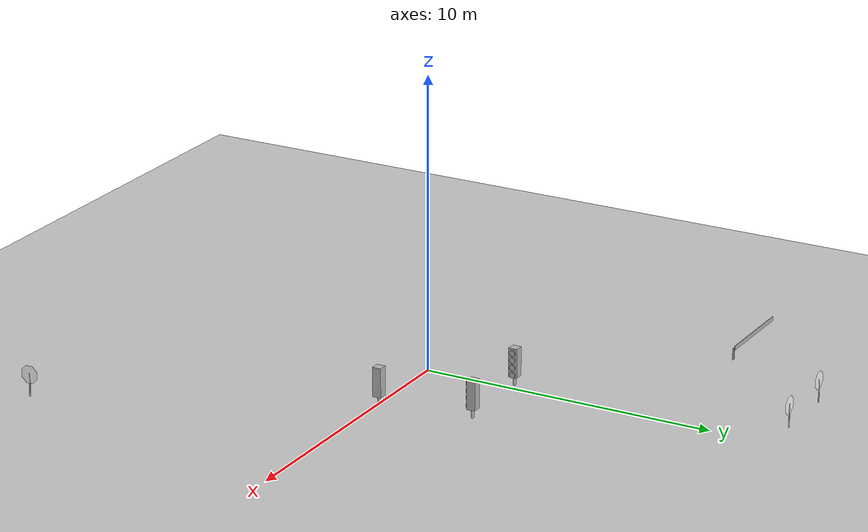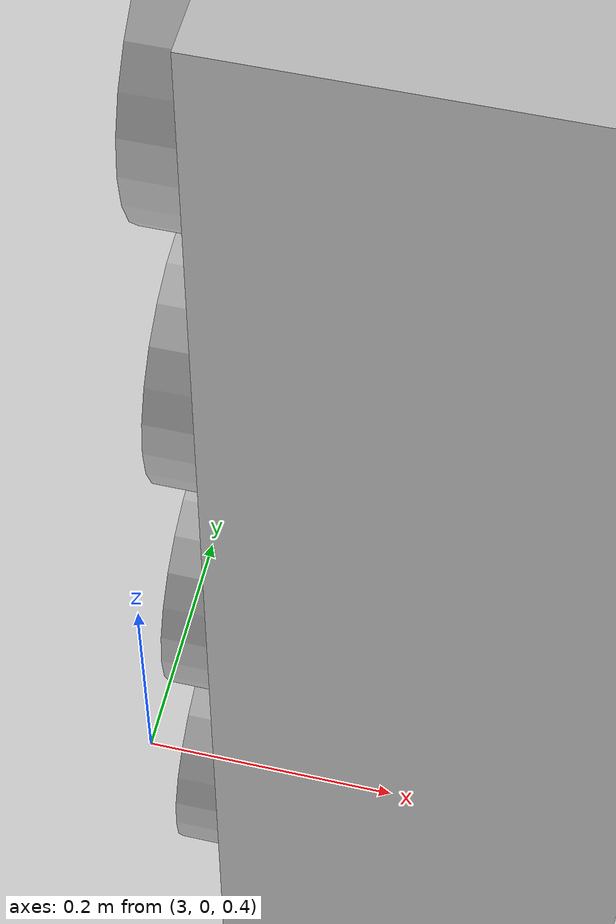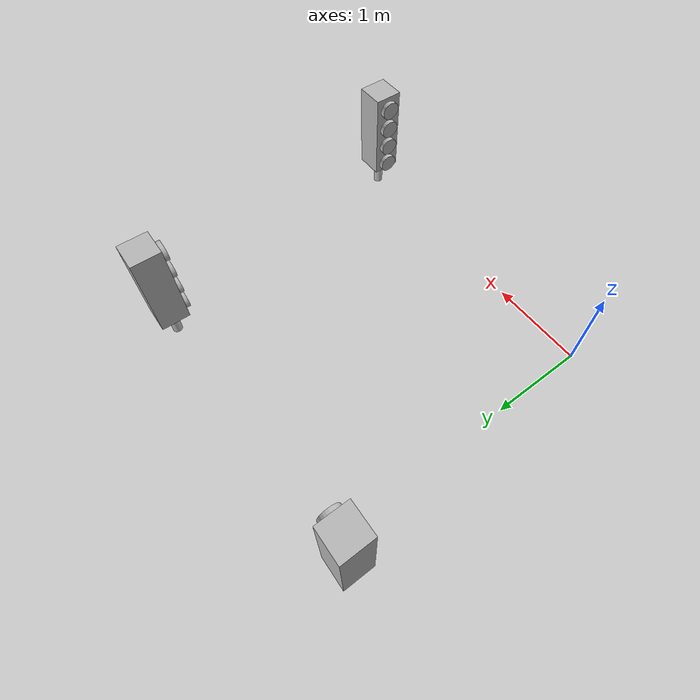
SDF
<?xml version="1.0"?>
<sdf version="1.5">
  <world name="default">

    <include>
      <uri>model://sun</uri>
    </include>

    <include>
      <uri>model://ground_plane</uri>
    </include>

    <!-- Own physics settings to speed up simulation -->
    <physics type='ode'>
      <max_step_size>0.01</max_step_size>
      <real_time_factor>1</real_time_factor>
      <real_time_update_rate>100</real_time_update_rate>
      <gravity>0 0 -9.8</gravity>
    </physics>

    <include>
      <pose>1 2.3 0.01 0 0 0</pose>
      <uri>model://ground</uri>
    </include>

    <include>
      <pose>-5.54 8.24 .25 0 0 0</pose>
      <uri>model://blocking_bar</uri>
    </include>

    <!-- traffic light Start -->
    <model name="traffic_light_first">
      <include>
	<static>true</static>
	<pose>3.24 0.03 .01 0 0 3.14</pose>
	<uri>model://stand_traffic_light</uri>
      </include>
    </model>

    <model name="traffic_light_second">
      <include>
	<static>true</static>
	<pose>2.7 3.1 .01 0 0 -1.57</pose>
	<uri>model://stand_traffic_light</uri>
      </include>
    </model>

    <model name="traffic_light_third">
      <include>
	<static>true</static>
	<pose>-0.28 3.0 .01 0 0 0</pose>
	<uri>model://stand_traffic_light</uri>
      </include>
    </model>
    <!-- traffic light End -->

    <!-- stop sign Start -->
    <model name="stop_sign_first">
      <pose>8 -10 -0.8 0 0 -1.57</pose>
      <static>true</static>
      <include>
	<uri>model://stop_sign_resize</uri>
      </include>
    </model>

    <model name="stop_sign_second">
      <pose>-1.5 12 -0.8 0 0 0</pose>
      <static>true</static>
      <include>
	<uri>model://stop_sign_resize</uri>
      </include>
    </model>

    <model name="stop_sign_third">
      <pose>-3.8 12 -0.8 0 0 0</pose>
      <static>true</static>
      <include>
	<uri>model://stop_sign_resize</uri>
      </include>
    </model>
    <!-- stop sign END -->
  </world>
</sdf>

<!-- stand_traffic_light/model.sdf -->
<sdf version="1.5">

  <model name="traffic_light">
    <static>true</static>
    <link name="traffic_downer_bar">
      <pose>0 0 0.15 0 0 0</pose>
      <collision name="traffic_downer_bar_collision">
	<geometry>
	  <cylinder>
	    <radius>0.05</radius>
	    <length>0.3</length>
	  </cylinder>
	</geometry>
      </collision>
      <visual name="traffic_downer_bar_visual">
	<geometry>
	  <cylinder>
	    <radius>0.05</radius>
	    <length>0.3</length>
	  </cylinder>
	</geometry>
      </visual>
    </link>

    <link name="traffic_upper_bar">
      <pose>0 0 0.8 0 0 0</pose>
      <collision name="traffic_upper_bar_collision">
	<geometry>
	  <box>
	    <size>0.3 0.3 1.0</size>
	  </box>
	</geometry>
      </collision>
      <visual name="traffic_upper_bar_visual">
	<geometry>
	  <box>
	    <size>0.3 0.3 1.0</size>
	  </box>
	</geometry>
      </visual>
    </link>

    <!-- Define Pane Start -->
    <link name="red_pane">
      <pose>0.175 0 1.15 0 1.57 0</pose>
      <collision name="traffic_light_red_collision">
	<geometry>
	  <cylinder>
	    <radius>.1</radius>
	    <length>.05</length>
	  </cylinder>
	</geometry>
      </collision>
      <visual name="traffic_light_red_visual">
	<geometry>
	  <cylinder>
	    <radius>.1</radius>
	    <length>.05</length>
	  </cylinder>
	</geometry>
      </visual>
      <light type="spot" name="red">
	<pose>0 0 .6 0 0 0</pose>
	<diffuse>1 0 0 1</diffuse>
	<specular>1 1 1 1</specular>
	<attenuation>
	  <range>0.6</range>
	  <linear>0.01</linear>
	  <constant>0.2</constant>
	  <quadratic>0.0</quadratic>
	</attenuation>
	<direction>0 0 -1</direction>
	<spot>
	  <inner_angle>0.1</inner_angle>
	  <outer_angle>0.5</outer_angle>
	  <falloff>1.2</falloff>
	</spot>
	<cast_shadows>false</cast_shadows>
      </light>
    </link>

    <link name="yellow_pane">
      <pose>0.175 0 0.9 0 1.57 0</pose>
      <collision name="traffic_light_yellow_collision">
	<geometry>
	  <cylinder>
	    <radius>.1</radius>
	    <length>.05</length>
	  </cylinder>
	</geometry>
      </collision>
      <visual name="traffic_light_yellow_visual">
	<geometry>
	  <cylinder>
	    <radius>.1</radius>
	    <length>.05</length>
	  </cylinder>
	</geometry>
      </visual>
      <!-- Yellow Spot Light -->
      <light type="spot" name="yellow">
	<pose>0 0 .6 0 0 0</pose>
	<diffuse>1 1 0 1</diffuse>
	<specular>.2 .2 .2 1</specular>
	<attenuation>
	  <range>0.6</range>
	  <linear>0.01</linear>
	  <constant>0.2</constant>
	  <quadratic>0.0</quadratic>
	</attenuation>
	<direction>0 0 -1</direction>
	<spot>
	  <inner_angle>0.1</inner_angle>
	  <outer_angle>0.5</outer_angle>
	  <falloff>1.2</falloff>
	</spot>
	<cast_shadows>false</cast_shadows>
      </light>

    </link>
    <link name="green_pane">
      <pose>0.175 0 .65 0 1.57 0</pose>
      <collision name="traffic_light_green_collision">
	<geometry>
	  <cylinder>
	    <radius>.1</radius>
	    <length>.05</length>
	  </cylinder>
	</geometry>
      </collision>
      <visual name="traffic_light_green_visual">
	<geometry>
	  <cylinder>
	    <radius>.1</radius>
	    <length>.05</length>
	  </cylinder>
	</geometry>
      </visual>
      <!-- Green Spot Light -->
      <light type="spot" name="green">
	<pose>0 0 .6 0 0 0</pose>
	<diffuse>0 1 0 1</diffuse>
	<specular>.2 .2 .2 1</specular>
	<attenuation>
	  <range>0.6</range>
	  <linear>0.01</linear>
	  <constant>0.2</constant>
	  <quadratic>0.0</quadratic>
	</attenuation>
	<direction>0 0 -1</direction>
	<spot>
	  <inner_angle>0.1</inner_angle>
	  <outer_angle>0.5</outer_angle>
	  <falloff>1.2</falloff>
	</spot>
	<cast_shadows>false</cast_shadows>
      </light>
    </link>
    <link name="arrow_pane">
      <pose>0.175 0 0.4 0 1.57 0</pose>
      <collision name="traffic_light_arrow_collision">
	<geometry>
	  <cylinder>
	    <radius>.1</radius>
	    <length>.05</length>
	  </cylinder>
	</geometry>
      </collision>
      <visual name="traffic_light_arrow_visual">
	<geometry>
	  <cylinder>
	    <radius>.1</radius>
	    <length>.05</length>
	  </cylinder>
	</geometry>
      </visual>
      <!-- Arrow Spot Light -->
      <light type="spot" name="arrow">
	<pose>0 0 .6 0 0 0</pose>
	<diffuse>0 1 0 1</diffuse>
	<specular>.2 .2 .2 1</specular>
	<attenuation>
	  <range>0.6</range>
	  <linear>0.01</linear>
	  <constant>0.2</constant>
	  <quadratic>0.0</quadratic>
	</attenuation>
	<direction>0 0 -1</direction>
	<spot>
	  <inner_angle>0.1</inner_angle>
	  <outer_angle>0.5</outer_angle>
	  <falloff>1.2</falloff>
	</spot>
	<cast_shadows>false</cast_shadows>
      </light>
    </link>
    <!-- Define Pane End -->

    <!-- Define Joint Start -->

    <joint name="traffic_bar_upper_joint" type="fixed">
      <pose>0 0 0 0 0 0</pose>
      <parent>traffic_downer_bar</parent>
      <child>traffic_upper_bar</child>
      <axis>
	<xyz>0 0 0</xyz>
      </axis>
    </joint>
    <joint name="traffic_bar_red_pane_joint" type="fixed">
      <pose>0 0 0.2 0 0 0</pose>
      <parent>traffic_upper_bar</parent>
      <child>red_pane</child>
      <pose>0 0 0 0 0 0</pose>
      <axis>
	<xyz>0 0 0</xyz>
	<limit>
	  <lower>0</lower>
	  <upper>1.57</upper>
	</limit>
      </axis>
    </joint>
    <joint name="traffic_bar_yellow_pane_joint" type="fixed">
      <pose>0 0 0.2 0 0 0</pose>
      <parent>traffic_upper_bar</parent>
      <child>yellow_pane</child>
      <pose>0 0 0 0 0 0</pose>
      <axis>
	<xyz>0 0 0</xyz>
	<limit>
	  <lower>0</lower>
	  <upper>1.57</upper>
	</limit>
      </axis>
    </joint>
    <joint name="traffic_bar_green_pane_joint" type="fixed">
      <pose>0 0 0.2 0 0 0</pose>
      <parent>traffic_upper_bar</parent>
      <child>green_pane</child>
      <pose>0 0 0 0 0 0</pose>
      <axis>
	<xyz>0 0 0</xyz>
	<limit>
	  <lower>0</lower>
	  <upper>1.57</upper>
	</limit>
      </axis>
    </joint>
    <joint name="traffic_bar_arrow_pane_joint" type="fixed">
      <pose>0 0 0.2 0 0 0</pose>
      <parent>traffic_upper_bar</parent>
      <child>arrow_pane</child>
      <pose>0 0 0 0 0 0</pose>
      <axis>
	<xyz>0 0 0</xyz>
	<limit>
	  <lower>0</lower>
	  <upper>1.57</upper>
	</limit>
      </axis>
    </joint>
    <plugin name='light_control' filename='libFlashLightPlugin.so'>
      <light>
	<light>red_pane/red</light>
	<duration>0.5</duration>
	<interval>0.5</interval>
      </light>
    </plugin>
  </model>
</sdf>

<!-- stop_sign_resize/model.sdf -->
<sdf version="1.5">
  <model name="Stop Sign">
    <static>true</static>
    <link name="link">
      <collision name="collision">
        <geometry>
          <mesh>
            <uri>model://stop_sign_resize/meshes/stop_sign.dae</uri>
          </mesh>
        </geometry>
      </collision>
      <visual name="visual">
        <geometry>
          <mesh>
            <uri>model://stop_sign_resize/meshes/stop_sign.dae</uri>
          </mesh>
        </geometry>
        <material>
          <script>
            <uri>model://stop_sign_resize/materials/scripts</uri>
            <uri>model://stop_sign_resize/materials/textures</uri>
            <name>StopSign/Diffuse</name>
          </script>
        </material>
      </visual>
    </link>
  </model>
</sdf>

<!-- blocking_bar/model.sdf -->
<sdf version="1.5">

      <model name="blocking_bar">

      <link name="blocking_bar_bottom">
    	<pose>0 0 0 0 0 0</pose>
    	<collision name="blocking_bar_bottom_collision">
          <geometry>
            <box>
              <size>0.05 0.05 0.4</size>
            </box>
          </geometry>
    	</collision>
    	<visual name="blocking_bar_bottom_visual">
          <geometry>
            <box>
              <size>0.05 0.05 0.4</size>
            </box>
          </geometry>
    	</visual>
      </link>
      <link name="blocking_bar_top">
    	<pose>-1.5 0.0334 0.2 0 0 0</pose>
    	<collision name="blocking_bar_top_collision">
          <geometry>
            <box>
              <size>3.0 0.02 0.15</size>
            </box>
          </geometry>
    	</collision>
    	<visual name="blocking_bar_top_visual">
          <geometry>
            <box>
              <size>3.0 0.02 0.15</size>
            </box>
          </geometry>
          <material>
            <script>
              <name>blocking</name>
              <uri>model://blocking_bar/materials/blocking.material</uri>
            </script>
          </material>
    	</visual>
      </link>
      <joint name="blocking_bar_fixed" type="fixed">
    	<pose>0 0 0.05 0 0 0</pose>
    	<parent>world</parent>
    	<child>blocking_bar_bottom</child>
    	<axis>
          <xyz>0 0 0</xyz>
    	</axis>
      </joint>
      <joint name="blocking_bar_joint" type="revolute">
    	<parent>blocking_bar_bottom</parent>
    	<child>blocking_bar_top</child>
    	<pose>1.5 0 0 0 0 0</pose>
    	<axis>
          <xyz>0 1 0</xyz>
          <limit>
            <lower>0</lower>
            <upper>1.57</upper>
          </limit>
    	</axis>
      </joint>
      <plugin name="blockingbar" filename="/home/rosuser/catkin_ws/src/deu_car/build/libblocking.so"/>
    </model>

</sdf>
